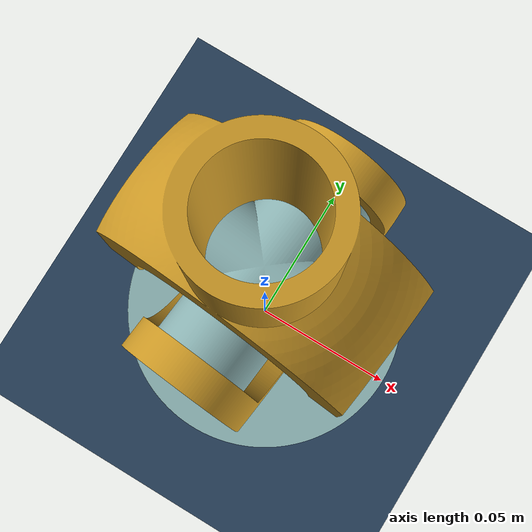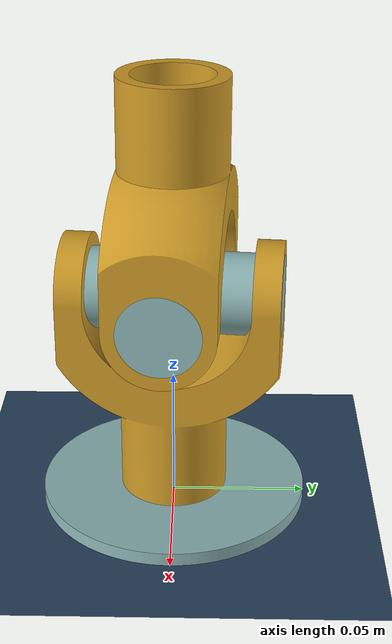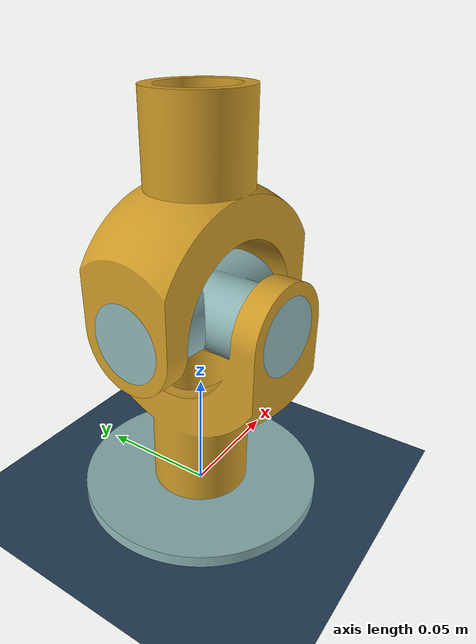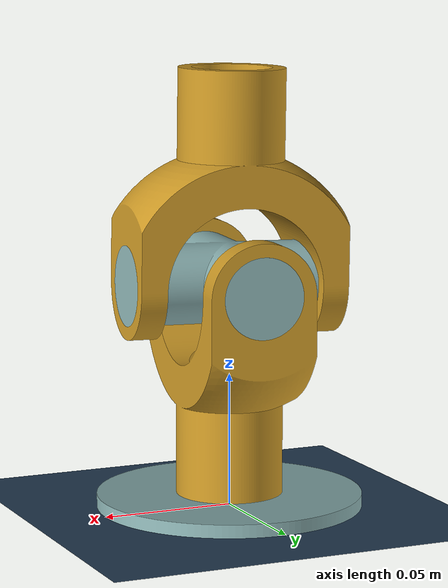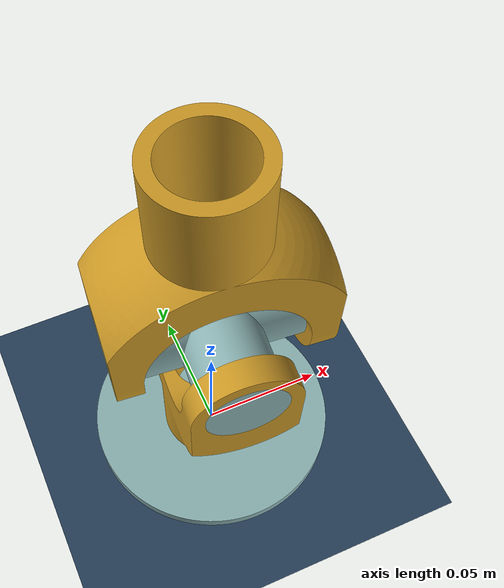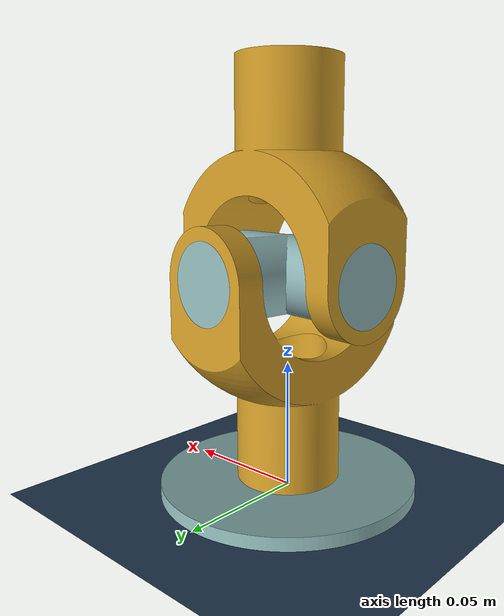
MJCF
<?xml version='1.0' encoding='utf-8'?>
<mujoco>
  <option integrator="implicitfast" timestep="0.002" solver="Newton" iterations="200" tolerance="1e-10" />
  <compiler meshdir="meshes" autolimits="true" inertiafromgeom="true" angle="radian" />
  <default>
    <joint damping="10.0" armature="1.0" />
    <geom conaffinity="0" condim="3" friction="1 0.5 0.5" margin="0" />
  </default>
  <asset>
    <texture type="skybox" builtin="gradient" rgb1="0.3 0.5 0.7" rgb2="0 0 0" width="512" height="3072" />
    <texture type="2d" name="groundplane" builtin="checker" mark="edge" rgb1="0.2 0.3 0.4" rgb2="0.1 0.2 0.3" markrgb="0.8 0.8 0.8" width="300" height="300" />
    <material name="groundplane" texture="groundplane" texuniform="true" texrepeat="5 5" reflectance="0.1" />
    <!--Part Meshes-->
    <mesh name="Base001" file="Base001.obj" scale="0.001 0.001 0.001" />
    <material name="Base001" rgba="0.5490196347236633 0.7019608020782471 0.7019608020782471 1.0" shininess="0.8999999761581421" />
    <!--Part Meshes-->
    <mesh name="Fork001" file="Fork001.obj" scale="0.001 0.001 0.001" />
    <material name="Fork001" rgba="0.800000011920929 0.6000000238418579 0.14901961386203766 1.0" shininess="0.8999999761581421" />
    <!--Part Meshes-->
    <mesh name="Cross001" file="Cross001.obj" scale="0.001 0.001 0.001" />
    <material name="Cross001" rgba="0.5490196347236633 0.7019608020782471 0.7019608020782471 1.0" shininess="0.8999999761581421" />
    <!--Part Meshes-->
    <mesh name="Fork002" file="Fork002.obj" scale="0.001 0.001 0.001" />
    <material name="Fork002" rgba="0.800000011920929 0.6000000238418579 0.14901961386203766 1.0" shininess="0.8999999761581421" />
  </asset>
  <worldbody>
    <!--Lighting and floor-->
    <light diffuse=".8 .8 .8" pos="0 0 4" dir="0 0 -1" />
    <light diffuse=".6 .6 .6" pos="4 4 4" dir="-1 -1 -1" />
    <geom name="floor" pos="0 0 -0.001" size="0 0 1" type="plane" material="groundplane" />
    <!--Assembly-->
    <body name="Base001" pos="0 0 0" quat="1.0 0.0 0.0 0.0">
      <geom type="mesh" name="Base001 geom" mesh="Base001" material="Base001" contype="0" conaffinity="0" />
      <site name="Base001 site" pos="0.0 0.0 0.0" quat="0.0 0.0 0.0 1.0" rgba="0 0 0 0" />
      <body name="Fork001" pos="0 0 0" quat="1.0 0.0 0.0 0.0">
        <geom type="mesh" name="Fork001 geom" mesh="Fork001" material="Fork001" contype="0" conaffinity="0" />
        <site name="Fork001 site" pos="-4.838377389001473e-18 -2.0939727293115306e-17 0.085" quat="-0.47532568357843136 0.5235126498287287 -0.47532568357843125 -0.5235126498287286" rgba="0 0 0 0" />
        <joint type="hinge" name="Revolute" pos="0.0 0.0 0.005" axis="0.0 0.0 1.0" />
        <body name="Cross001" pos="0 0 0" quat="1.0 0.0 0.0 0.0">
          <geom type="mesh" name="Cross001 geom" mesh="Cross001" material="Cross001" contype="0" conaffinity="0" />
          <site name="Cross001 site" pos="9.061630942733248e-18 -2.0867313428048794e-17 0.08499999999999999" quat="0.7108464156515756 -0.034293369702085845 -0.7016946555581709 -0.033851861261728775" rgba="0 0 0 0" />
          <joint type="hinge" name="Revolute001" pos="0.0038504791249115147 0.03981424130268741 0.085" axis="-0.09626197812278817 -0.9953560325671855 -5.551115123125783e-17" />
          <body name="Fork002" pos="0 0 0" quat="1.0 0.0 0.0 0.0">
            <geom type="mesh" name="Fork002 geom" mesh="Fork002" material="Fork002" contype="0" conaffinity="0" />
            <site name="Fork002 site" pos="8.127305743263869e-18 -2.1650268581842862e-17 0.08499999999999995" quat="0.03285181747343714 0.7017421864463297 -0.03530638677954942 0.710796821111905" rgba="0 0 0 0" />
            <joint type="hinge" name="Revolute002" pos="0.03981089891136326 -0.0038501558785655 0.08551829294801729" axis="-0.9952724727840812 0.09625389696413694 -0.012957323700433067" />
          </body>
        </body>
      </body>
    </body>
  </worldbody>
  <contact />
  <equality />
  <tendon />
  <actuator>
    <position name="Revolute" joint="Revolute" kp="100" />
    <position name="Revolute001" joint="Revolute001" kp="100" />
    <position name="Revolute002" joint="Revolute002" kp="100" />
  </actuator>
  <sensor>
    <jointpos name="Revolute_pos" joint="Revolute" />
    <jointpos name="Revolute001_pos" joint="Revolute001" />
    <jointpos name="Revolute002_pos" joint="Revolute002" />
  </sensor>
</mujoco>
